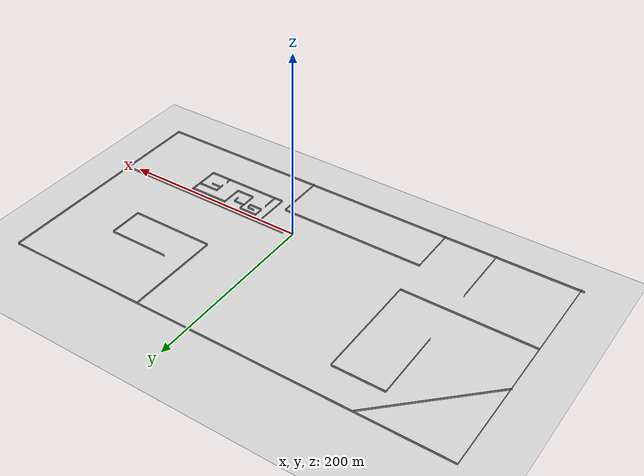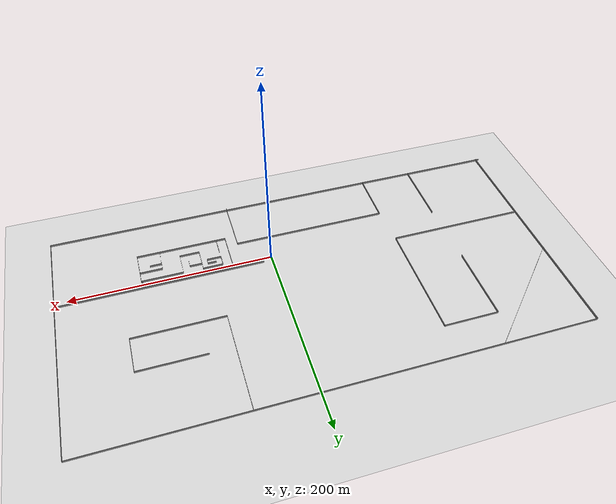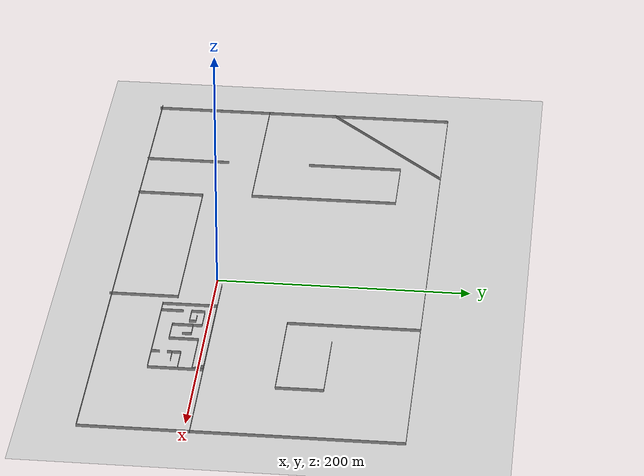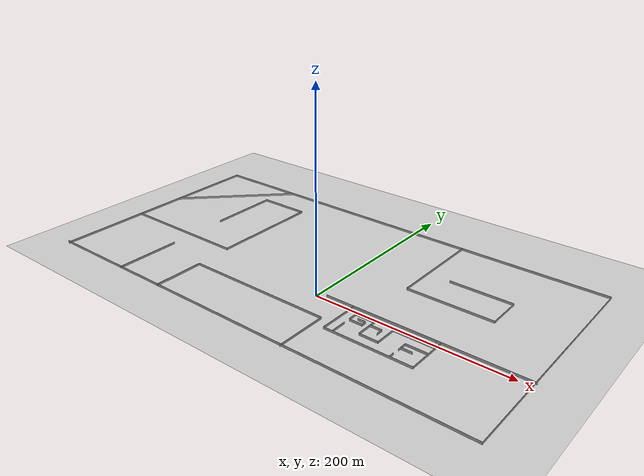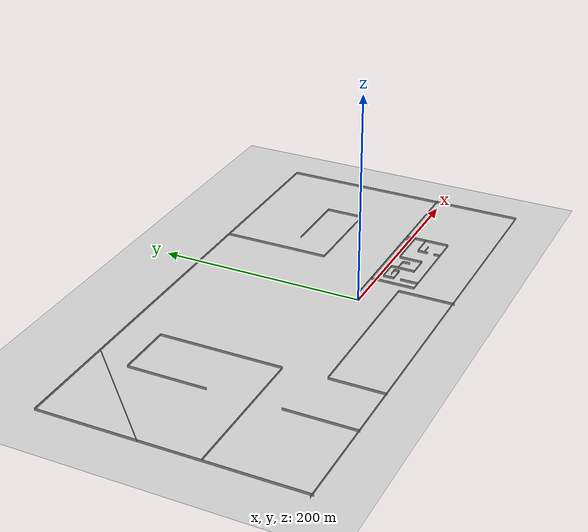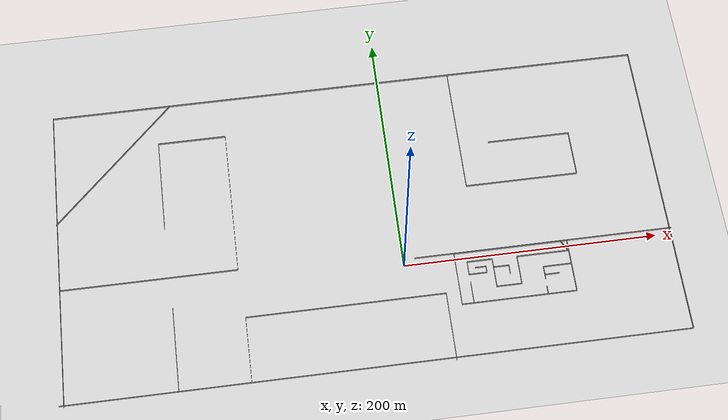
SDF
<sdf version="1.6">
 <world name="default">
  <light name="sun" type="directional">
   <pose>0 0 10 0 -0 0</pose>
   <diffuse>0.8 0.8 0.8 1</diffuse>
   <specular>0.2 0.2 0.2 1</specular>
   <attenuation>
    <range>1000</range>
    <constant>0.9</constant>
    <linear>0.01</linear>
    <quadratic>0.001</quadratic>
   </attenuation>
   <direction>-0.5 0.1 -0.9</direction>
  </light>
  <model name="ground_plane">
   <static>1</static>
   <link name="link">
    <collision name="collision">
     <geometry><plane><normal>0 0 1</normal><size>100 100</size></plane></geometry>
     <surface><friction><ode><mu>100</mu><mu2>50</mu2></ode></friction></surface>
    </collision>
    <visual name="visual">
     <cast_shadows>0</cast_shadows>
     <geometry><plane><normal>0 0 1</normal><size>100 100</size></plane></geometry>
     <material>
      <script><uri>file://media/materials/scripts/gazebo.material</uri><name>Gazebo/Grey</name></script>
     </material>
    </visual>
   </link>
  </model>
  <gravity>0 0 -9.8</gravity>
  <magnetic_field>6e-06 2.3e-05 -4.2e-05</magnetic_field>
  <atmosphere type="adiabatic"/>
  <physics name="default_physics" default="0" type="ode">
   <max_step_size>0.001</max_step_size>
   <real_time_factor>1</real_time_factor>
   <real_time_update_rate>1000</real_time_update_rate>
  </physics>
  <scene><ambient>0.4 0.4 0.4 1</ambient><background>0.7 0.7 0.7 1</background><shadows>1</shadows></scene>
  <audio><device>default</device></audio>
  <spherical_coordinates>
   <surface_model>EARTH_WGS84</surface_model>
   <latitude_deg>0</latitude_deg>
   <longitude_deg>0</longitude_deg>
   <elevation>0</elevation>
   <heading_deg>0</heading_deg>
  </spherical_coordinates>
  <model name="BigBigWallTest">
   <pose>-29.0959 41.635 0 0 -0 0</pose>
   <link name="Wall_10">
    <collision name="Wall_10_Collision">
     <geometry><box><size>479.75 0.15 2.5</size></box></geometry>
     <pose>0 0 1.25 0 -0 0</pose>
    </collision>
    <visual name="Wall_10_Visual">
     <pose>0 0 1.25 0 -0 0</pose>
     <geometry><box><size>479.75 0.15 2.5</size></box></geometry>
     <material>
      <script><uri>file://media/materials/scripts/gazebo.material</uri><name>Gazebo/Grey</name></script>
      <ambient>1 1 1 1</ambient>
     </material>
     <meta><layer>0</layer></meta>
    </visual>
    <pose>1.14789 123.336 0 0 -0 3.14159</pose>
   </link>
   <link name="Wall_11">
    <collision name="Wall_11_Collision">
     <geometry><box><size>246.75 0.15 2.5</size></box></geometry>
     <pose>0 0 1.25 0 -0 0</pose>
    </collision>
    <visual name="Wall_11_Visual">
     <pose>0 0 1.25 0 -0 0</pose>
     <geometry><box><size>246.75 0.15 2.5</size></box></geometry>
     <material>
      <script><uri>file://media/materials/scripts/gazebo.material</uri><name>Gazebo/Grey</name></script>
      <ambient>1 1 1 1</ambient>
     </material>
     <meta><layer>0</layer></meta>
    </visual>
    <pose>-238.652 0.03624 0 0 -0 -1.5708</pose>
   </link>
   <link name="Wall_13">
    <collision name="Wall_13_Collision">
     <geometry><box><size>135.5 0.15 2.5</size></box></geometry>
     <pose>0 0 1.25 0 -0 0</pose>
    </collision>
    <visual name="Wall_13_Visual">
     <pose>0 0 1.25 0 -0 0</pose>
     <geometry><box><size>135.5 0.15 2.5</size></box></geometry>
     <material>
      <script><uri>file://media/materials/scripts/gazebo.material</uri><name>Gazebo/Grey</name></script>
      <ambient>1 1 1 1</ambient>
     </material>
     <meta><layer>0</layer></meta>
    </visual>
    <pose>-191.535 74.8418 0 0 -0 -2.35619</pose>
   </link>
   <link name="Wall_15">
    <collision name="Wall_15_Collision">
     <geometry><box><size>53.25 0.15 2.5</size></box></geometry>
     <pose>0 0 1.25 0 -0 0</pose>
    </collision>
    <visual name="Wall_15_Visual">
     <pose>0 0 1.25 0 -0 0</pose>
     <geometry><box><size>53.25 0.15 2.5</size></box></geometry>
     <material>
      <script><uri>file://media/materials/scripts/gazebo.material</uri><name>Gazebo/Grey</name></script>
      <ambient>1 1 1 1</ambient>
     </material>
     <meta><layer>0</layer></meta>
    </visual>
    <pose>-97.8812 -95.7863 0 0 -0 1.5708</pose>
   </link>
   <link name="Wall_16">
    <collision name="Wall_16_Collision">
     <geometry><box><size>155.75 0.15 2.5</size></box></geometry>
     <pose>0 0 1.25 0 -0 0</pose>
    </collision>
    <visual name="Wall_16_Visual">
     <pose>0 0 1.25 0 -0 0</pose>
     <geometry><box><size>155.75 0.15 2.5</size></box></geometry>
     <material>
      <script><uri>file://media/materials/scripts/gazebo.material</uri><name>Gazebo/Grey</name></script>
      <ambient>1 1 1 1</ambient>
     </material>
     <meta><layer>0</layer></meta>
    </visual>
    <pose>-20.0812 -69.2363 0 0 -0 0</pose>
   </link>
   <link name="Wall_17">
    <collision name="Wall_17_Collision">
     <geometry><box><size>54.25 0.15 2.5</size></box></geometry>
     <pose>0 0 1.25 0 -0 0</pose>
    </collision>
    <visual name="Wall_17_Visual">
     <pose>0 0 1.25 0 -0 0</pose>
     <geometry><box><size>54.25 0.15 2.5</size></box></geometry>
     <material>
      <script><uri>file://media/materials/scripts/gazebo.material</uri><name>Gazebo/Grey</name></script>
      <ambient>1 1 1 1</ambient>
     </material>
     <meta><layer>0</layer></meta>
    </visual>
    <pose>57.7188 -96.2863 0 0 -0 -1.5708</pose>
   </link>
   <link name="Wall_19">
    <collision name="Wall_19_Collision">
     <geometry><box><size>204.5 0.15 2.5</size></box></geometry>
     <pose>0 0 1.25 0 -0 0</pose>
    </collision>
    <visual name="Wall_19_Visual">
     <pose>0 0 1.25 0 -0 0</pose>
     <geometry><box><size>204.5 0.15 2.5</size></box></geometry>
     <material>
      <script><uri>file://media/materials/scripts/gazebo.material</uri><name>Gazebo/Grey</name></script>
      <ambient>1 1 1 1</ambient>
     </material>
     <meta><layer>0</layer></meta>
    </visual>
    <pose>139.977 -37.0332 0 0 -0 0</pose>
   </link>
   <link name="Wall_21">
    <collision name="Wall_21_Collision">
     <geometry><box><size>103 0.15 2.5</size></box></geometry>
     <pose>0 0 1.25 0 -0 0</pose>
    </collision>
    <visual name="Wall_21_Visual">
     <pose>0 0 1.25 0 -0 0</pose>
     <geometry><box><size>103 0.15 2.5</size></box></geometry>
     <material>
      <script><uri>file://media/materials/scripts/gazebo.material</uri><name>Gazebo/Grey</name></script>
      <ambient>1 1 1 1</ambient>
     </material>
     <meta><layer>0</layer></meta>
    </visual>
    <pose>87.6099 71.2702 0 0 -0 -1.5708</pose>
   </link>
   <link name="Wall_22">
    <collision name="Wall_22_Collision">
     <geometry><box><size>90 0.15 2.5</size></box></geometry>
     <pose>0 0 1.25 0 -0 0</pose>
    </collision>
    <visual name="Wall_22_Visual">
     <pose>0 0 1.25 0 -0 0</pose>
     <geometry><box><size>90 0.15 2.5</size></box></geometry>
     <material>
      <script><uri>file://media/materials/scripts/gazebo.material</uri><name>Gazebo/Grey</name></script>
      <ambient>1 1 1 1</ambient>
     </material>
     <meta><layer>0</layer></meta>
    </visual>
    <pose>132.535 19.8452 0 0 -0 0</pose>
   </link>
   <link name="Wall_23">
    <collision name="Wall_23_Collision">
     <geometry><box><size>37 0.15 2.5</size></box></geometry>
     <pose>0 0 1.25 0 -0 0</pose>
    </collision>
    <visual name="Wall_23_Visual">
     <pose>0 0 1.25 0 -0 0</pose>
     <geometry><box><size>37 0.15 2.5</size></box></geometry>
     <material>
      <script><uri>file://media/materials/scripts/gazebo.material</uri><name>Gazebo/Grey</name></script>
      <ambient>1 1 1 1</ambient>
     </material>
     <meta><layer>0</layer></meta>
    </visual>
    <pose>177.46 38.2702 0 0 -0 1.5708</pose>
   </link>
   <link name="Wall_24">
    <collision name="Wall_24_Collision">
     <geometry><box><size>66 0.15 2.5</size></box></geometry>
     <pose>0 0 1.25 0 -0 0</pose>
    </collision>
    <visual name="Wall_24_Visual">
     <pose>0 0 1.25 0 -0 0</pose>
     <geometry><box><size>66 0.15 2.5</size></box></geometry>
     <material>
      <script><uri>file://media/materials/scripts/gazebo.material</uri><name>Gazebo/Grey</name></script>
      <ambient>1 1 1 1</ambient>
     </material>
     <meta><layer>0</layer></meta>
    </visual>
    <pose>144.535 56.6953 0 0 -0 3.14159</pose>
   </link>
   <link name="Wall_26">
    <collision name="Wall_26_Collision">
     <geometry><box><size>138 0.15 2.5</size></box></geometry>
     <pose>0 0 1.25 0 -0 0</pose>
    </collision>
    <visual name="Wall_26_Visual">
     <pose>0 0 1.25 0 -0 0</pose>
     <geometry><box><size>138 0.15 2.5</size></box></geometry>
     <material>
      <script><uri>file://media/materials/scripts/gazebo.material</uri><name>Gazebo/Grey</name></script>
      <ambient>1 1 1 1</ambient>
     </material>
     <meta><layer>0</layer></meta>
    </visual>
    <pose>-169.22 -29.0182 0 0 -0 0</pose>
   </link>
   <link name="Wall_27">
    <collision name="Wall_27_Collision">
     <geometry><box><size>118.5 0.15 2.5</size></box></geometry>
     <pose>0 0 1.25 0 -0 0</pose>
    </collision>
    <visual name="Wall_27_Visual">
     <pose>0 0 1.25 0 -0 0</pose>
     <geometry><box><size>118.5 0.15 2.5</size></box></geometry>
     <material>
      <script><uri>file://media/materials/scripts/gazebo.material</uri><name>Gazebo/Grey</name></script>
      <ambient>1 1 1 1</ambient>
     </material>
     <meta><layer>0</layer></meta>
    </visual>
    <pose>-100.295 30.1568 0 0 -0 1.5708</pose>
   </link>
   <link name="Wall_28">
    <collision name="Wall_28_Collision">
     <geometry><box><size>54.5 0.15 2.5</size></box></geometry>
     <pose>0 0 1.25 0 -0 0</pose>
    </collision>
    <visual name="Wall_28_Visual">
     <pose>0 0 1.25 0 -0 0</pose>
     <geometry><box><size>54.5 0.15 2.5</size></box></geometry>
     <material>
      <script><uri>file://media/materials/scripts/gazebo.material</uri><name>Gazebo/Grey</name></script>
      <ambient>1 1 1 1</ambient>
     </material>
     <meta><layer>0</layer></meta>
    </visual>
    <pose>-127.47 89.3318 0 0 -0 3.14159</pose>
   </link>
   <link name="Wall_29">
    <collision name="Wall_29_Collision">
     <geometry><box><size>76.25 0.15 2.5</size></box></geometry>
     <pose>0 0 1.25 0 -0 0</pose>
    </collision>
    <visual name="Wall_29_Visual">
     <pose>0 0 1.25 0 -0 0</pose>
     <geometry><box><size>76.25 0.15 2.5</size></box></geometry>
     <material>
      <script><uri>file://media/materials/scripts/gazebo.material</uri><name>Gazebo/Grey</name></script>
      <ambient>1 1 1 1</ambient>
     </material>
     <meta><layer>0</layer></meta>
    </visual>
    <pose>-154.645 51.2818 0 0 -0 -1.5708</pose>
   </link>
   <link name="Wall_31">
    <collision name="Wall_31_Collision">
     <geometry><box><size>68.25 0.15 2.5</size></box></geometry>
     <pose>0 0 1.25 0 -0 0</pose>
    </collision>
    <visual name="Wall_31_Visual">
     <pose>0 0 1.25 0 -0 0</pose>
     <geometry><box><size>68.25 0.15 2.5</size></box></geometry>
     <material>
      <script><uri>file://media/materials/scripts/gazebo.material</uri><name>Gazebo/Grey</name></script>
      <ambient>1 1 1 1</ambient>
     </material>
     <meta><layer>0</layer></meta>
    </visual>
    <pose>-152.842 -88.2583 0 0 -0 -1.5708</pose>
   </link>
   <link name="Wall_8">
    <collision name="Wall_8_Collision">
     <geometry><box><size>483.25 0.15 2.5</size></box></geometry>
     <pose>0 0 1.25 0 -0 0</pose>
    </collision>
    <visual name="Wall_8_Visual">
     <pose>0 0 1.25 0 -0 0</pose>
     <geometry><box><size>483.25 0.15 2.5</size></box></geometry>
     <material>
      <script><uri>file://media/materials/scripts/gazebo.material</uri><name>Gazebo/Grey</name></script>
      <ambient>1 1 1 1</ambient>
     </material>
     <meta><layer>0</layer></meta>
    </visual>
    <pose>-0.602112 -121.764 0 0 -0 0</pose>
   </link>
   <link name="Wall_9">
    <collision name="Wall_9_Collision">
     <geometry><box><size>245.25 0.15 2.5</size></box></geometry>
     <pose>0 0 1.25 0 -0 0</pose>
    </collision>
    <visual name="Wall_9_Visual">
     <pose>0 0 1.25 0 -0 0</pose>
     <geometry><box><size>245.25 0.15 2.5</size></box></geometry>
     <material>
      <script><uri>file://media/materials/scripts/gazebo.material</uri><name>Gazebo/Grey</name></script>
      <ambient>1 1 1 1</ambient>
     </material>
     <meta><layer>0</layer></meta>
    </visual>
    <pose>240.948 0.78624 0 0 -0 1.5708</pose>
   </link>
   <static>1</static>
  </model>
  <model name="ExploringOffice">
   <pose>84.431 -16.9388 0 0 -0 0</pose>
   <link name="Wall_1">
    <collision name="Wall_1_Collision">
     <geometry><box><size>90 0.15 2.5</size></box></geometry>
     <pose>0 0 1.25 0 -0 0</pose>
    </collision>
    <visual name="Wall_1_Visual">
     <pose>0 0 1.25 0 -0 0</pose>
     <geometry><box><size>90 0.15 2.5</size></box></geometry>
     <material>
      <script><uri>file://media/materials/scripts/gazebo.material</uri><name>Gazebo/Grey</name></script>
      <ambient>1 1 1 1</ambient>
     </material>
     <meta><layer>0</layer></meta>
    </visual>
    <pose>0 -21.3181 0 0 -0 0</pose>
   </link>
   <link name="Wall_10">
    <collision name="Wall_10_Collision">
     <geometry><box><size>23 0.15 2.5</size></box></geometry>
     <pose>0 0 1.25 0 -0 0</pose>
    </collision>
    <visual name="Wall_10_Visual">
     <pose>0 0 1.25 0 -0 0</pose>
     <geometry><box><size>23 0.15 2.5</size></box></geometry>
     <material>
      <script><uri>file://media/materials/scripts/gazebo.material</uri><name>Gazebo/Grey</name></script>
      <ambient>1 1 1 1</ambient>
     </material>
     <meta><layer>0</layer></meta>
    </visual>
    <pose>3.68597 1.33528 0 0 -0 1.5708</pose>
   </link>
   <link name="Wall_11">
    <collision name="Wall_11_Collision">
     <geometry><box><size>41.25 0.15 2.5</size></box></geometry>
     <pose>0 0 1.25 0 -0 0</pose>
    </collision>
    <visual name="Wall_11_Visual">
     <pose>0 0 1.25 0 -0 0</pose>
     <geometry><box><size>41.25 0.15 2.5</size></box></geometry>
     <material>
      <script><uri>file://media/materials/scripts/gazebo.material</uri><name>Gazebo/Grey</name></script>
      <ambient>1 1 1 1</ambient>
     </material>
     <meta><layer>0</layer></meta>
    </visual>
    <pose>24.236 12.7603 0 0 -0 0</pose>
   </link>
   <link name="Wall_12">
    <collision name="Wall_12_Collision">
     <geometry><box><size>10 0.15 2.5</size></box></geometry>
     <pose>0 0 1.25 0 -0 0</pose>
    </collision>
    <visual name="Wall_12_Visual">
     <pose>0 0 1.25 0 -0 0</pose>
     <geometry><box><size>10 0.15 2.5</size></box></geometry>
     <material>
      <script><uri>file://media/materials/scripts/gazebo.material</uri><name>Gazebo/Grey</name></script>
      <ambient>1 1 1 1</ambient>
     </material>
     <meta><layer>0</layer></meta>
    </visual>
    <pose>42.3235 17.0255 0 0 -0 2.0944</pose>
   </link>
   <link name="Wall_14">
    <collision name="Wall_14_Collision">
     <geometry><box><size>7 0.15 2.5</size></box></geometry>
     <pose>0 0 1.25 0 -0 0</pose>
    </collision>
    <visual name="Wall_14_Visual">
     <pose>0 0 1.25 0 -0 0</pose>
     <geometry><box><size>7 0.15 2.5</size></box></geometry>
     <material>
      <script><uri>file://media/materials/scripts/gazebo.material</uri><name>Gazebo/Grey</name></script>
      <ambient>1 1 1 1</ambient>
     </material>
     <meta><layer>0</layer></meta>
    </visual>
    <pose>-15.914 9.68528 0 0 -0 1.5708</pose>
   </link>
   <link name="Wall_15">
    <collision name="Wall_15_Collision">
     <geometry><box><size>20 0.15 2.5</size></box></geometry>
     <pose>0 0 1.25 0 -0 0</pose>
    </collision>
    <visual name="Wall_15_Visual">
     <pose>0 0 1.25 0 -0 0</pose>
     <geometry><box><size>20 0.15 2.5</size></box></geometry>
     <material>
      <script><uri>file://media/materials/scripts/gazebo.material</uri><name>Gazebo/Grey</name></script>
      <ambient>1 1 1 1</ambient>
     </material>
     <meta><layer>0</layer></meta>
    </visual>
    <pose>-25.839 13.1103 0 0 -0 3.14159</pose>
   </link>
   <link name="Wall_16">
    <collision name="Wall_16_Collision">
     <geometry><box><size>10.75 0.15 2.5</size></box></geometry>
     <pose>0 0 1.25 0 -0 0</pose>
    </collision>
    <visual name="Wall_16_Visual">
     <pose>0 0 1.25 0 -0 0</pose>
     <geometry><box><size>10.75 0.15 2.5</size></box></geometry>
     <material>
      <script><uri>file://media/materials/scripts/gazebo.material</uri><name>Gazebo/Grey</name></script>
      <ambient>1 1 1 1</ambient>
     </material>
     <meta><layer>0</layer></meta>
    </visual>
    <pose>-35.764 7.81028 0 0 -0 -1.5708</pose>
   </link>
   <link name="Wall_17">
    <collision name="Wall_17_Collision">
     <geometry><box><size>14.25 0.15 2.5</size></box></geometry>
     <pose>0 0 1.25 0 -0 0</pose>
    </collision>
    <visual name="Wall_17_Visual">
     <pose>0 0 1.25 0 -0 0</pose>
     <geometry><box><size>14.25 0.15 2.5</size></box></geometry>
     <material>
      <script><uri>file://media/materials/scripts/gazebo.material</uri><name>Gazebo/Grey</name></script>
      <ambient>1 1 1 1</ambient>
     </material>
     <meta><layer>0</layer></meta>
    </visual>
    <pose>-28.714 2.51028 0 0 -0 0</pose>
   </link>
   <link name="Wall_18">
    <collision name="Wall_18_Collision">
     <geometry><box><size>5.25 0.15 2.5</size></box></geometry>
     <pose>0 0 1.25 0 -0 0</pose>
    </collision>
    <visual name="Wall_18_Visual">
     <pose>0 0 1.25 0 -0 0</pose>
     <geometry><box><size>5.25 0.15 2.5</size></box></geometry>
     <material>
      <script><uri>file://media/materials/scripts/gazebo.material</uri><name>Gazebo/Grey</name></script>
      <ambient>1 1 1 1</ambient>
     </material>
     <meta><layer>0</layer></meta>
    </visual>
    <pose>-21.664 5.06028 0 0 -0 1.5708</pose>
   </link>
   <link name="Wall_19">
    <collision name="Wall_19_Collision">
     <geometry><box><size>8.5 0.15 2.5</size></box></geometry>
     <pose>0 0 1.25 0 -0 0</pose>
    </collision>
    <visual name="Wall_19_Visual">
     <pose>0 0 1.25 0 -0 0</pose>
     <geometry><box><size>8.5 0.15 2.5</size></box></geometry>
     <material>
      <script><uri>file://media/materials/scripts/gazebo.material</uri><name>Gazebo/Grey</name></script>
      <ambient>1 1 1 1</ambient>
     </material>
     <meta><layer>0</layer></meta>
    </visual>
    <pose>-25.839 7.61028 0 0 -0 3.14159</pose>
   </link>
   <link name="Wall_2">
    <collision name="Wall_2_Collision">
     <geometry><box><size>42.75 0.15 2.5</size></box></geometry>
     <pose>0 0 1.25 0 -0 0</pose>
    </collision>
    <visual name="Wall_2_Visual">
     <pose>0 0 1.25 0 -0 0</pose>
     <geometry><box><size>42.75 0.15 2.5</size></box></geometry>
     <material>
      <script><uri>file://media/materials/scripts/gazebo.material</uri><name>Gazebo/Grey</name></script>
      <ambient>1 1 1 1</ambient>
     </material>
     <meta><layer>0</layer></meta>
    </visual>
    <pose>44.925 -0.018077 0 0 -0 1.5708</pose>
   </link>
   <link name="Wall_21">
    <collision name="Wall_21_Collision">
     <geometry><box><size>17.25 0.15 2.5</size></box></geometry>
     <pose>0 0 1.25 0 -0 0</pose>
    </collision>
    <visual name="Wall_21_Visual">
     <pose>0 0 1.25 0 -0 0</pose>
     <geometry><box><size>17.25 0.15 2.5</size></box></geometry>
     <material>
      <script><uri>file://media/materials/scripts/gazebo.material</uri><name>Gazebo/Grey</name></script>
      <ambient>1 1 1 1</ambient>
     </material>
     <meta><layer>0</layer></meta>
    </visual>
    <pose>-35.6189 -12.6073 0 0 -0 -1.5708</pose>
   </link>
   <link name="Wall_23">
    <collision name="Wall_23_Collision">
     <geometry><box><size>22.25 0.15 2.5</size></box></geometry>
     <pose>0 0 1.25 0 -0 0</pose>
    </collision>
    <visual name="Wall_23_Visual">
     <pose>0 0 1.25 0 -0 0</pose>
     <geometry><box><size>22.25 0.15 2.5</size></box></geometry>
     <material>
      <script><uri>file://media/materials/scripts/gazebo.material</uri><name>Gazebo/Grey</name></script>
      <ambient>1 1 1 1</ambient>
     </material>
     <meta><layer>0</layer></meta>
    </visual>
    <pose>33.7472 1.61211 0 0 -0 3.14159</pose>
   </link>
   <link name="Wall_24">
    <collision name="Wall_24_Collision">
     <geometry><box><size>10.5 0.15 2.5</size></box></geometry>
     <pose>0 0 1.25 0 -0 0</pose>
    </collision>
    <visual name="Wall_24_Visual">
     <pose>0 0 1.25 0 -0 0</pose>
     <geometry><box><size>10.5 0.15 2.5</size></box></geometry>
     <material>
      <script><uri>file://media/materials/scripts/gazebo.material</uri><name>Gazebo/Grey</name></script>
      <ambient>1 1 1 1</ambient>
     </material>
     <meta><layer>0</layer></meta>
    </visual>
    <pose>22.6972 -3.56289 0 0 -0 -1.5708</pose>
   </link>
   <link name="Wall_26">
    <collision name="Wall_26_Collision">
     <geometry><box><size>6.5 0.15 2.5</size></box></geometry>
     <pose>0 0 1.25 0 -0 0</pose>
    </collision>
    <visual name="Wall_26_Visual">
     <pose>0 0 1.25 0 -0 0</pose>
     <geometry><box><size>6.5 0.15 2.5</size></box></geometry>
     <material>
      <script><uri>file://media/materials/scripts/gazebo.material</uri><name>Gazebo/Grey</name></script>
      <ambient>1 1 1 1</ambient>
     </material>
     <meta><layer>0</layer></meta>
    </visual>
    <pose>22.4533 -18.0717 0 0 -0 -1.5708</pose>
   </link>
   <link name="Wall_28">
    <collision name="Wall_28_Collision">
     <geometry><box><size>11.5 0.15 2.5</size></box></geometry>
     <pose>0 0 1.25 0 -0 0</pose>
    </collision>
    <visual name="Wall_28_Visual">
     <pose>0 0 1.25 0 -0 0</pose>
     <geometry><box><size>11.5 0.15 2.5</size></box></geometry>
     <material>
      <script><uri>file://media/materials/scripts/gazebo.material</uri><name>Gazebo/Grey</name></script>
      <ambient>1 1 1 1</ambient>
     </material>
     <meta><layer>0</layer></meta>
    </visual>
    <pose>28.413 -5.07682 0 0 -0 0</pose>
   </link>
   <link name="Wall_3">
    <collision name="Wall_3_Collision">
     <geometry><box><size>90 0.15 2.5</size></box></geometry>
     <pose>0 0 1.25 0 -0 0</pose>
    </collision>
    <visual name="Wall_3_Visual">
     <pose>0 0 1.25 0 -0 0</pose>
     <geometry><box><size>90 0.15 2.5</size></box></geometry>
     <material>
      <script><uri>file://media/materials/scripts/gazebo.material</uri><name>Gazebo/Grey</name></script>
      <ambient>1 1 1 1</ambient>
     </material>
     <meta><layer>0</layer></meta>
    </visual>
    <pose>0 21.2819 0 0 -0 3.14159</pose>
   </link>
   <link name="Wall_4">
    <collision name="Wall_4_Collision">
     <geometry><box><size>42.75 0.15 2.5</size></box></geometry>
     <pose>0 0 1.25 0 -0 0</pose>
    </collision>
    <visual name="Wall_4_Visual">
     <pose>0 0 1.25 0 -0 0</pose>
     <geometry><box><size>42.75 0.15 2.5</size></box></geometry>
     <material>
      <script><uri>file://media/materials/scripts/gazebo.material</uri><name>Gazebo/Grey</name></script>
      <ambient>1 1 1 1</ambient>
     </material>
     <meta><layer>0</layer></meta>
    </visual>
    <pose>-44.925 -0.018077 0 0 -0 -1.5708</pose>
   </link>
   <link name="Wall_6">
    <collision name="Wall_6_Collision">
     <geometry><box><size>7.25 0.15 2.5</size></box></geometry>
     <pose>0 0 1.25 0 -0 0</pose>
    </collision>
    <visual name="Wall_6_Visual">
     <pose>0 0 1.25 0 -0 0</pose>
     <geometry><box><size>7.25 0.15 2.5</size></box></geometry>
     <material>
      <script><uri>file://media/materials/scripts/gazebo.material</uri><name>Gazebo/Grey</name></script>
      <ambient>1 1 1 1</ambient>
     </material>
     <meta><layer>0</layer></meta>
    </visual>
    <pose>-3.81403 2.71028 0 0 -0 1.5708</pose>
   </link>
   <link name="Wall_7">
    <collision name="Wall_7_Collision">
     <geometry><box><size>12.25 0.15 2.5</size></box></geometry>
     <pose>0 0 1.25 0 -0 0</pose>
    </collision>
    <visual name="Wall_7_Visual">
     <pose>0 0 1.25 0 -0 0</pose>
     <geometry><box><size>12.25 0.15 2.5</size></box></geometry>
     <material>
      <script><uri>file://media/materials/scripts/gazebo.material</uri><name>Gazebo/Grey</name></script>
      <ambient>1 1 1 1</ambient>
     </material>
     <meta><layer>0</layer></meta>
    </visual>
    <pose>-9.86403 6.26028 0 0 -0 3.14159</pose>
   </link>
   <link name="Wall_8">
    <collision name="Wall_8_Collision">
     <geometry><box><size>16.5 0.15 2.5</size></box></geometry>
     <pose>0 0 1.25 0 -0 0</pose>
    </collision>
    <visual name="Wall_8_Visual">
     <pose>0 0 1.25 0 -0 0</pose>
     <geometry><box><size>16.5 0.15 2.5</size></box></geometry>
     <material>
      <script><uri>file://media/materials/scripts/gazebo.material</uri><name>Gazebo/Grey</name></script>
      <ambient>1 1 1 1</ambient>
     </material>
     <meta><layer>0</layer></meta>
    </visual>
    <pose>-15.914 -1.91472 0 0 -0 -1.5708</pose>
   </link>
   <link name="Wall_9">
    <collision name="Wall_9_Collision">
     <geometry><box><size>19.75 0.15 2.5</size></box></geometry>
     <pose>0 0 1.25 0 -0 0</pose>
    </collision>
    <visual name="Wall_9_Visual">
     <pose>0 0 1.25 0 -0 0</pose>
     <geometry><box><size>19.75 0.15 2.5</size></box></geometry>
     <material>
      <script><uri>file://media/materials/scripts/gazebo.material</uri><name>Gazebo/Grey</name></script>
      <ambient>1 1 1 1</ambient>
     </material>
     <meta><layer>0</layer></meta>
    </visual>
    <pose>-6.11403 -10.0897 0 0 -0 0</pose>
   </link>
   <static>1</static>
  </model>
 </world>
</sdf>
